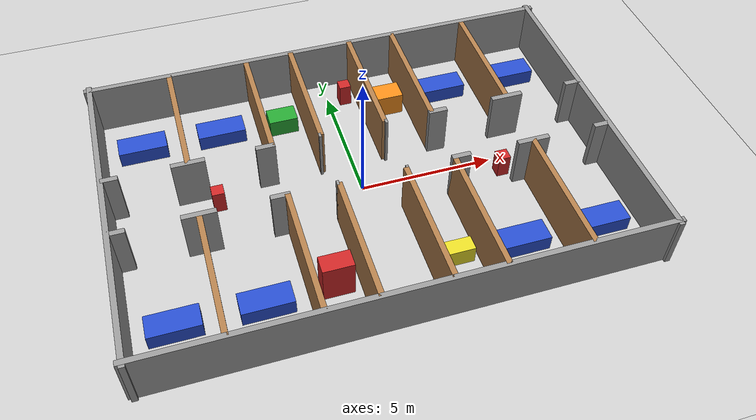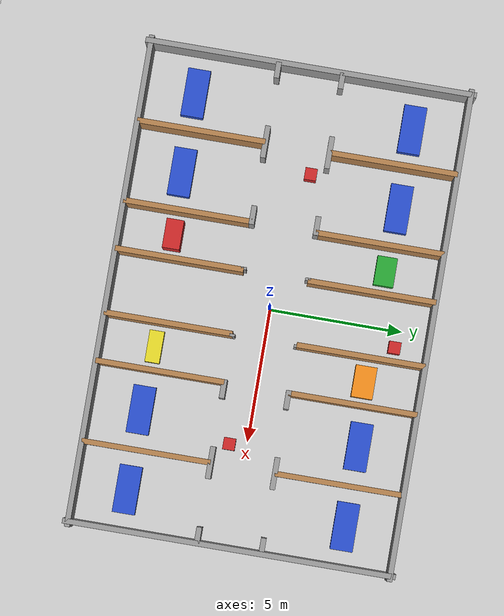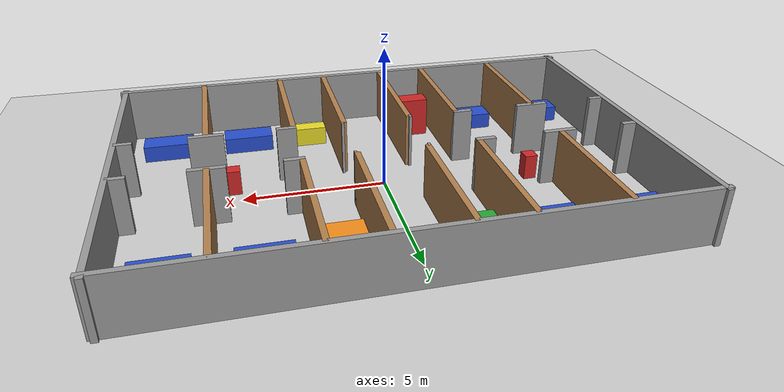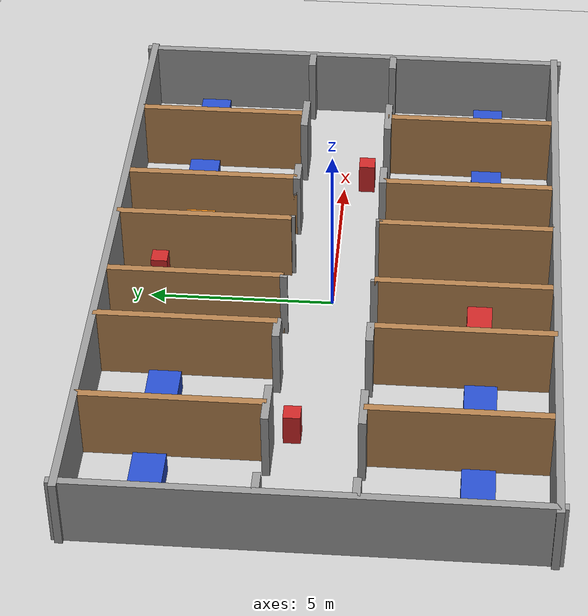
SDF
<sdf version="1.6">
 <world name="hospital_world">
  <include><uri>model://sun</uri></include>
  <include><uri>model://ground_plane</uri></include>
  <model name="hospital_structure">
   <static>true</static>
   <link name="wall_outer_north">
    <pose>0 6 1 0 0 0</pose>
    <collision name="collision"><geometry><box><size>18.4 0.2 2</size></box></geometry></collision>
    <visual name="visual">
     <geometry><box><size>18.4 0.2 2</size></box></geometry>
     <material><script><name>Gazebo/Grey</name></script></material>
    </visual>
   </link>
   <link name="wall_outer_south">
    <pose>0 -6 1 0 0 0</pose>
    <collision name="collision"><geometry><box><size>18.4 0.2 2</size></box></geometry></collision>
    <visual name="visual">
     <geometry><box><size>18.4 0.2 2</size></box></geometry>
     <material><script><name>Gazebo/Grey</name></script></material>
    </visual>
   </link>
   <link name="wall_outer_west">
    <pose>-9 0 1 0 0 0</pose>
    <collision name="collision"><geometry><box><size>0.2 12.4 2</size></box></geometry></collision>
    <visual name="visual">
     <geometry><box><size>0.2 12.4 2</size></box></geometry>
     <material><script><name>Gazebo/Grey</name></script></material>
    </visual>
   </link>
   <link name="wall_outer_east">
    <pose>9 0 1 0 0 0</pose>
    <collision name="collision"><geometry><box><size>0.2 12.4 2</size></box></geometry></collision>
    <visual name="visual">
     <geometry><box><size>0.2 12.4 2</size></box></geometry>
     <material><script><name>Gazebo/Grey</name></script></material>
    </visual>
   </link>
   <link name="wall_upper_front_l1">
    <pose>-8.7 1.2 1 0 0 0</pose>
    <collision name="collision"><geometry><box><size>0.6 0.2 2</size></box></geometry></collision>
    <visual name="visual">
     <geometry><box><size>0.6 0.2 2</size></box></geometry>
     <material><script><name>Gazebo/Grey</name></script></material>
    </visual>
   </link>
   <link name="wall_upper_front_l2">
    <pose>-6.0 1.2 1 0 0 0</pose>
    <collision name="collision"><geometry><box><size>1.2 0.2 2</size></box></geometry></collision>
    <visual name="visual">
     <geometry><box><size>1.2 0.2 2</size></box></geometry>
     <material><script><name>Gazebo/Grey</name></script></material>
    </visual>
   </link>
   <link name="wall_upper_front_l3">
    <pose>-3.25 1.2 1 0 0 0</pose>
    <collision name="collision"><geometry><box><size>0.7 0.2 2</size></box></geometry></collision>
    <visual name="visual">
     <geometry><box><size>0.7 0.2 2</size></box></geometry>
     <material><script><name>Gazebo/Grey</name></script></material>
    </visual>
   </link>
   <link name="wall_upper_front_l4">
    <pose>-1.25 1.2 1 0 0 0</pose>
    <collision name="collision"><geometry><box><size>0.1 0.2 2</size></box></geometry></collision>
    <visual name="visual">
     <geometry><box><size>0.1 0.2 2</size></box></geometry>
     <material><script><name>Gazebo/Grey</name></script></material>
    </visual>
   </link>
   <link name="wall_upper_front_r1">
    <pose>1.25 1.2 1 0 0 0</pose>
    <collision name="collision"><geometry><box><size>0.1 0.2 2</size></box></geometry></collision>
    <visual name="visual">
     <geometry><box><size>0.1 0.2 2</size></box></geometry>
     <material><script><name>Gazebo/Grey</name></script></material>
    </visual>
   </link>
   <link name="wall_upper_front_r2">
    <pose>3.25 1.2 1 0 0 0</pose>
    <collision name="collision"><geometry><box><size>0.7 0.2 2</size></box></geometry></collision>
    <visual name="visual">
     <geometry><box><size>0.7 0.2 2</size></box></geometry>
     <material><script><name>Gazebo/Grey</name></script></material>
    </visual>
   </link>
   <link name="wall_upper_front_r3">
    <pose>6.0 1.2 1 0 0 0</pose>
    <collision name="collision"><geometry><box><size>1.2 0.2 2</size></box></geometry></collision>
    <visual name="visual">
     <geometry><box><size>1.2 0.2 2</size></box></geometry>
     <material><script><name>Gazebo/Grey</name></script></material>
    </visual>
   </link>
   <link name="wall_upper_front_r4">
    <pose>8.7 1.2 1 0 0 0</pose>
    <collision name="collision"><geometry><box><size>0.6 0.2 2</size></box></geometry></collision>
    <visual name="visual">
     <geometry><box><size>0.6 0.2 2</size></box></geometry>
     <material><script><name>Gazebo/Grey</name></script></material>
    </visual>
   </link>
   <link name="wall_lower_front_l1">
    <pose>-8.7 -1.2 1 0 0 0</pose>
    <collision name="collision"><geometry><box><size>0.6 0.2 2</size></box></geometry></collision>
    <visual name="visual">
     <geometry><box><size>0.6 0.2 2</size></box></geometry>
     <material><script><name>Gazebo/Grey</name></script></material>
    </visual>
   </link>
   <link name="wall_lower_front_l2">
    <pose>-6.0 -1.2 1 0 0 0</pose>
    <collision name="collision"><geometry><box><size>1.2 0.2 2</size></box></geometry></collision>
    <visual name="visual">
     <geometry><box><size>1.2 0.2 2</size></box></geometry>
     <material><script><name>Gazebo/Grey</name></script></material>
    </visual>
   </link>
   <link name="wall_lower_front_l3">
    <pose>-3.25 -1.2 1 0 0 0</pose>
    <collision name="collision"><geometry><box><size>0.7 0.2 2</size></box></geometry></collision>
    <visual name="visual">
     <geometry><box><size>0.7 0.2 2</size></box></geometry>
     <material><script><name>Gazebo/Grey</name></script></material>
    </visual>
   </link>
   <link name="wall_lower_front_l4">
    <pose>-1.25 -1.2 1 0 0 0</pose>
    <collision name="collision"><geometry><box><size>0.1 0.2 2</size></box></geometry></collision>
    <visual name="visual">
     <geometry><box><size>0.1 0.2 2</size></box></geometry>
     <material><script><name>Gazebo/Grey</name></script></material>
    </visual>
   </link>
   <link name="wall_lower_front_r1">
    <pose>1.25 -1.2 1 0 0 0</pose>
    <collision name="collision"><geometry><box><size>0.1 0.2 2</size></box></geometry></collision>
    <visual name="visual">
     <geometry><box><size>0.1 0.2 2</size></box></geometry>
     <material><script><name>Gazebo/Grey</name></script></material>
    </visual>
   </link>
   <link name="wall_lower_front_r2">
    <pose>3.25 -1.2 1 0 0 0</pose>
    <collision name="collision"><geometry><box><size>0.7 0.2 2</size></box></geometry></collision>
    <visual name="visual">
     <geometry><box><size>0.7 0.2 2</size></box></geometry>
     <material><script><name>Gazebo/Grey</name></script></material>
    </visual>
   </link>
   <link name="wall_lower_front_r3">
    <pose>6.0 -1.2 1 0 0 0</pose>
    <collision name="collision"><geometry><box><size>1.2 0.2 2</size></box></geometry></collision>
    <visual name="visual">
     <geometry><box><size>1.2 0.2 2</size></box></geometry>
     <material><script><name>Gazebo/Grey</name></script></material>
    </visual>
   </link>
   <link name="wall_lower_front_r4">
    <pose>8.7 -1.2 1 0 0 0</pose>
    <collision name="collision"><geometry><box><size>0.6 0.2 2</size></box></geometry></collision>
    <visual name="visual">
     <geometry><box><size>0.6 0.2 2</size></box></geometry>
     <material><script><name>Gazebo/Grey</name></script></material>
    </visual>
   </link>
   <link name="wall_top_room_split_l1">
    <pose>-6 3.6 1 0 0 0</pose>
    <collision name="collision"><geometry><box><size>0.2 4.8 2</size></box></geometry></collision>
    <visual name="visual">
     <geometry><box><size>0.2 4.8 2</size></box></geometry>
     <material><script><name>Gazebo/Wood</name></script></material>
    </visual>
   </link>
   <link name="wall_top_room_split_l2">
    <pose>-3 3.6 1 0 0 0</pose>
    <collision name="collision"><geometry><box><size>0.2 4.8 2</size></box></geometry></collision>
    <visual name="visual">
     <geometry><box><size>0.2 4.8 2</size></box></geometry>
     <material><script><name>Gazebo/Wood</name></script></material>
    </visual>
   </link>
   <link name="wall_top_cross_west">
    <pose>-1.2 3.6 1 0 0 0</pose>
    <collision name="collision"><geometry><box><size>0.2 4.8 2</size></box></geometry></collision>
    <visual name="visual">
     <geometry><box><size>0.2 4.8 2</size></box></geometry>
     <material><script><name>Gazebo/Wood</name></script></material>
    </visual>
   </link>
   <link name="wall_top_cross_east">
    <pose>1.2 3.6 1 0 0 0</pose>
    <collision name="collision"><geometry><box><size>0.2 4.8 2</size></box></geometry></collision>
    <visual name="visual">
     <geometry><box><size>0.2 4.8 2</size></box></geometry>
     <material><script><name>Gazebo/Wood</name></script></material>
    </visual>
   </link>
   <link name="wall_top_room_split_r1">
    <pose>3 3.6 1 0 0 0</pose>
    <collision name="collision"><geometry><box><size>0.2 4.8 2</size></box></geometry></collision>
    <visual name="visual">
     <geometry><box><size>0.2 4.8 2</size></box></geometry>
     <material><script><name>Gazebo/Wood</name></script></material>
    </visual>
   </link>
   <link name="wall_top_room_split_r2">
    <pose>6 3.6 1 0 0 0</pose>
    <collision name="collision"><geometry><box><size>0.2 4.8 2</size></box></geometry></collision>
    <visual name="visual">
     <geometry><box><size>0.2 4.8 2</size></box></geometry>
     <material><script><name>Gazebo/Wood</name></script></material>
    </visual>
   </link>
   <link name="wall_bottom_room_split_l1">
    <pose>-6 -3.6 1 0 0 0</pose>
    <collision name="collision"><geometry><box><size>0.2 4.8 2</size></box></geometry></collision>
    <visual name="visual">
     <geometry><box><size>0.2 4.8 2</size></box></geometry>
     <material><script><name>Gazebo/Wood</name></script></material>
    </visual>
   </link>
   <link name="wall_bottom_room_split_l2">
    <pose>-3 -3.6 1 0 0 0</pose>
    <collision name="collision"><geometry><box><size>0.2 4.8 2</size></box></geometry></collision>
    <visual name="visual">
     <geometry><box><size>0.2 4.8 2</size></box></geometry>
     <material><script><name>Gazebo/Wood</name></script></material>
    </visual>
   </link>
   <link name="wall_bottom_cross_west">
    <pose>-1.2 -3.6 1 0 0 0</pose>
    <collision name="collision"><geometry><box><size>0.2 4.8 2</size></box></geometry></collision>
    <visual name="visual">
     <geometry><box><size>0.2 4.8 2</size></box></geometry>
     <material><script><name>Gazebo/Wood</name></script></material>
    </visual>
   </link>
   <link name="wall_bottom_cross_east">
    <pose>1.2 -3.6 1 0 0 0</pose>
    <collision name="collision"><geometry><box><size>0.2 4.8 2</size></box></geometry></collision>
    <visual name="visual">
     <geometry><box><size>0.2 4.8 2</size></box></geometry>
     <material><script><name>Gazebo/Wood</name></script></material>
    </visual>
   </link>
   <link name="wall_bottom_room_split_r1">
    <pose>3 -3.6 1 0 0 0</pose>
    <collision name="collision"><geometry><box><size>0.2 4.8 2</size></box></geometry></collision>
    <visual name="visual">
     <geometry><box><size>0.2 4.8 2</size></box></geometry>
     <material><script><name>Gazebo/Wood</name></script></material>
    </visual>
   </link>
   <link name="wall_bottom_room_split_r2">
    <pose>6 -3.6 1 0 0 0</pose>
    <collision name="collision"><geometry><box><size>0.2 4.8 2</size></box></geometry></collision>
    <visual name="visual">
     <geometry><box><size>0.2 4.8 2</size></box></geometry>
     <material><script><name>Gazebo/Wood</name></script></material>
    </visual>
   </link>
  </model>
  <model name="hospital_furniture">
   <static>true</static>
   <link name="bed_room_a">
    <pose>-7.5 4.1 0.3 0 0 0</pose>
    <collision name="collision"><geometry><box><size>1.8 0.85 0.6</size></box></geometry></collision>
    <visual name="visual">
     <geometry><box><size>1.8 0.85 0.6</size></box></geometry>
     <material><script><name>Gazebo/Blue</name></script></material>
    </visual>
   </link>
   <link name="bed_room_b">
    <pose>-4.5 4.1 0.3 0 0 0</pose>
    <collision name="collision"><geometry><box><size>1.8 0.85 0.6</size></box></geometry></collision>
    <visual name="visual">
     <geometry><box><size>1.8 0.85 0.6</size></box></geometry>
     <material><script><name>Gazebo/Blue</name></script></material>
    </visual>
   </link>
   <link name="exam_table_c">
    <pose>-2.1 4.0 0.35 0 0 0</pose>
    <collision name="collision"><geometry><box><size>1.1 0.75 0.7</size></box></geometry></collision>
    <visual name="visual">
     <geometry><box><size>1.1 0.75 0.7</size></box></geometry>
     <material><script><name>Gazebo/Green</name></script></material>
    </visual>
   </link>
   <link name="nurse_desk">
    <pose>2.1 3.9 0.45 0 0 0</pose>
    <collision name="collision"><geometry><box><size>1.2 0.8 0.9</size></box></geometry></collision>
    <visual name="visual">
     <geometry><box><size>1.2 0.8 0.9</size></box></geometry>
     <material><script><name>Gazebo/Orange</name></script></material>
    </visual>
   </link>
   <link name="bed_room_d">
    <pose>4.5 4.1 0.3 0 0 0</pose>
    <collision name="collision"><geometry><box><size>1.8 0.85 0.6</size></box></geometry></collision>
    <visual name="visual">
     <geometry><box><size>1.8 0.85 0.6</size></box></geometry>
     <material><script><name>Gazebo/Blue</name></script></material>
    </visual>
   </link>
   <link name="bed_room_e">
    <pose>7.5 4.1 0.3 0 0 0</pose>
    <collision name="collision"><geometry><box><size>1.8 0.85 0.6</size></box></geometry></collision>
    <visual name="visual">
     <geometry><box><size>1.8 0.85 0.6</size></box></geometry>
     <material><script><name>Gazebo/Blue</name></script></material>
    </visual>
   </link>
   <link name="bed_room_f">
    <pose>-7.5 -4.1 0.3 0 0 0</pose>
    <collision name="collision"><geometry><box><size>1.8 0.85 0.6</size></box></geometry></collision>
    <visual name="visual">
     <geometry><box><size>1.8 0.85 0.6</size></box></geometry>
     <material><script><name>Gazebo/Blue</name></script></material>
    </visual>
   </link>
   <link name="bed_room_g">
    <pose>-4.5 -4.1 0.3 0 0 0</pose>
    <collision name="collision"><geometry><box><size>1.8 0.85 0.6</size></box></geometry></collision>
    <visual name="visual">
     <geometry><box><size>1.8 0.85 0.6</size></box></geometry>
     <material><script><name>Gazebo/Blue</name></script></material>
    </visual>
   </link>
   <link name="storage_shelf">
    <pose>-2.1 -4.0 0.75 0 0 0</pose>
    <collision name="collision"><geometry><box><size>1.1 0.65 1.5</size></box></geometry></collision>
    <visual name="visual">
     <geometry><box><size>1.1 0.65 1.5</size></box></geometry>
     <material><script><name>Gazebo/Red</name></script></material>
    </visual>
   </link>
   <link name="waiting_chair_bank">
    <pose>2.1 -4.0 0.35 0 0 0</pose>
    <collision name="collision"><geometry><box><size>1.2 0.55 0.7</size></box></geometry></collision>
    <visual name="visual">
     <geometry><box><size>1.2 0.55 0.7</size></box></geometry>
     <material><script><name>Gazebo/Yellow</name></script></material>
    </visual>
   </link>
   <link name="bed_room_h">
    <pose>4.5 -4.1 0.3 0 0 0</pose>
    <collision name="collision"><geometry><box><size>1.8 0.85 0.6</size></box></geometry></collision>
    <visual name="visual">
     <geometry><box><size>1.8 0.85 0.6</size></box></geometry>
     <material><script><name>Gazebo/Blue</name></script></material>
    </visual>
   </link>
   <link name="bed_room_i">
    <pose>7.5 -4.1 0.3 0 0 0</pose>
    <collision name="collision"><geometry><box><size>1.8 0.85 0.6</size></box></geometry></collision>
    <visual name="visual">
     <geometry><box><size>1.8 0.85 0.6</size></box></geometry>
     <material><script><name>Gazebo/Blue</name></script></material>
    </visual>
   </link>
   <link name="corridor_cart_west">
    <pose>-5.2 0.65 0.45 0 0 0</pose>
    <collision name="collision"><geometry><box><size>0.45 0.45 0.9</size></box></geometry></collision>
    <visual name="visual">
     <geometry><box><size>0.45 0.45 0.9</size></box></geometry>
     <material><script><name>Gazebo/Red</name></script></material>
    </visual>
   </link>
   <link name="corridor_cart_east">
    <pose>5.2 -0.65 0.45 0 0 0</pose>
    <collision name="collision"><geometry><box><size>0.45 0.45 0.9</size></box></geometry></collision>
    <visual name="visual">
     <geometry><box><size>0.45 0.45 0.9</size></box></geometry>
     <material><script><name>Gazebo/Red</name></script></material>
    </visual>
   </link>
   <link name="cross_corridor_cart">
    <pose>0.65 4.8 0.45 0 0 0</pose>
    <collision name="collision"><geometry><box><size>0.45 0.45 0.9</size></box></geometry></collision>
    <visual name="visual">
     <geometry><box><size>0.45 0.45 0.9</size></box></geometry>
     <material><script><name>Gazebo/Red</name></script></material>
    </visual>
   </link>
  </model>
 </world>
</sdf>
